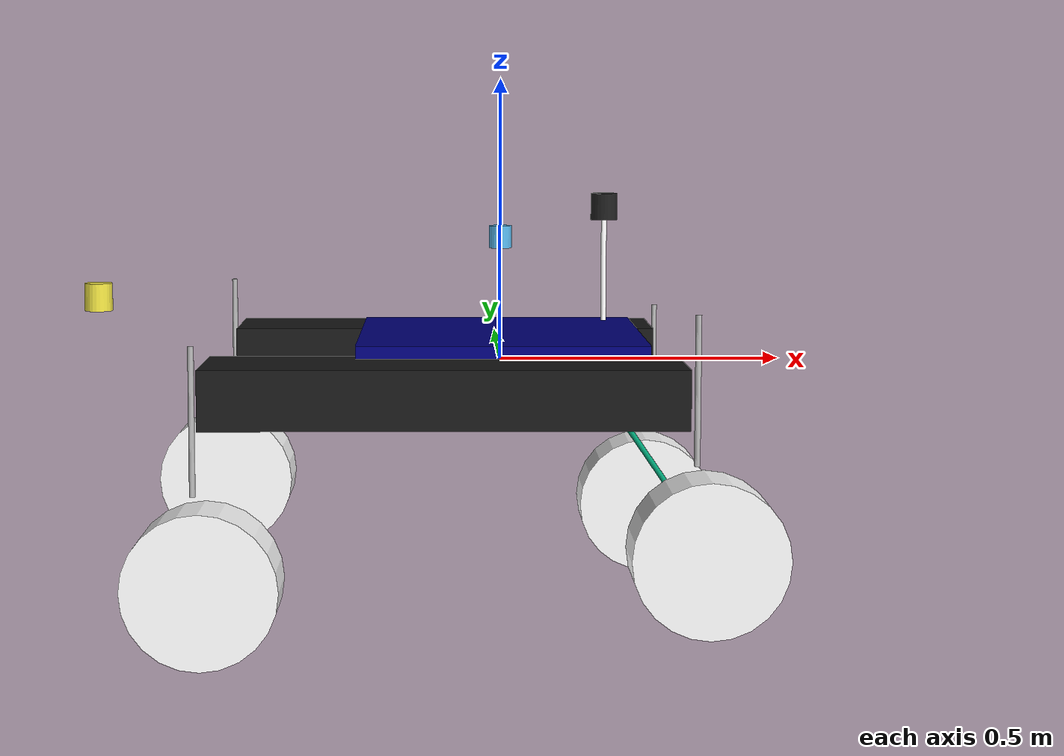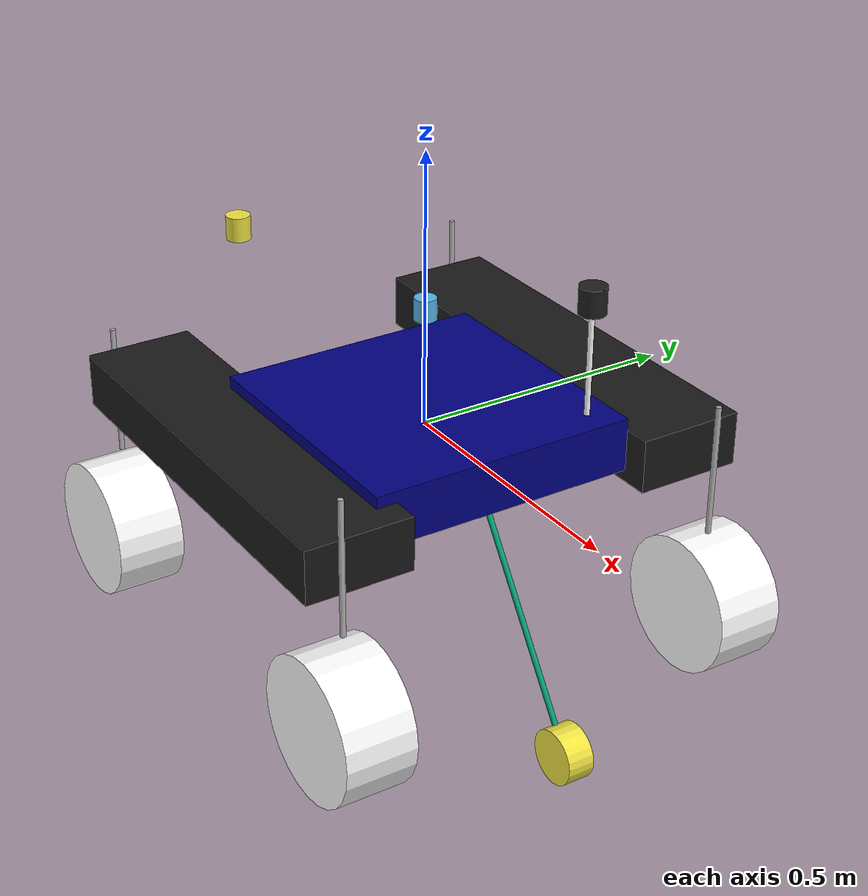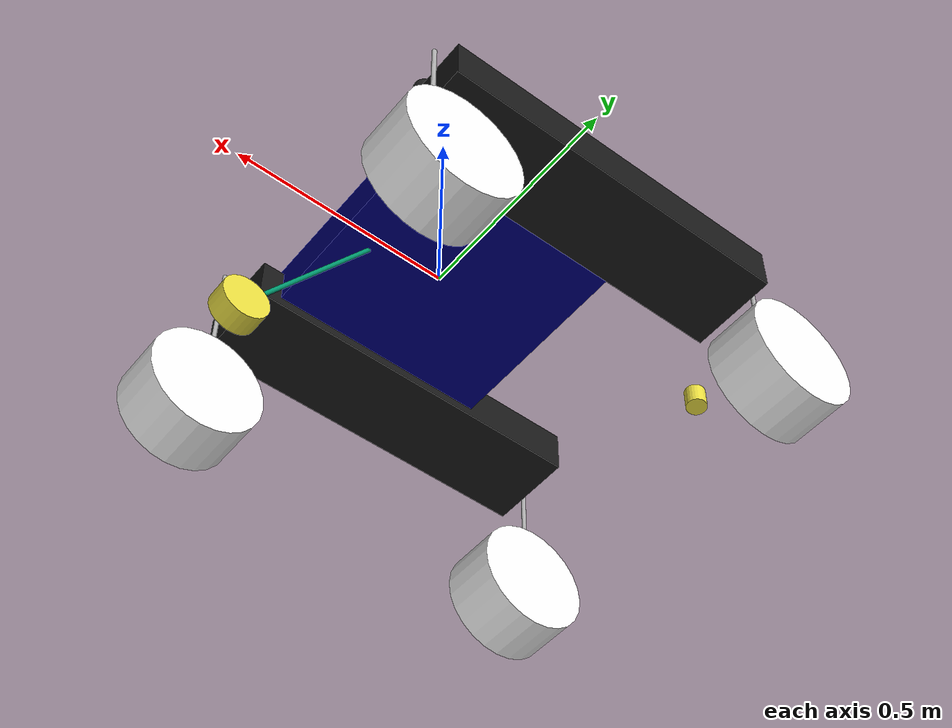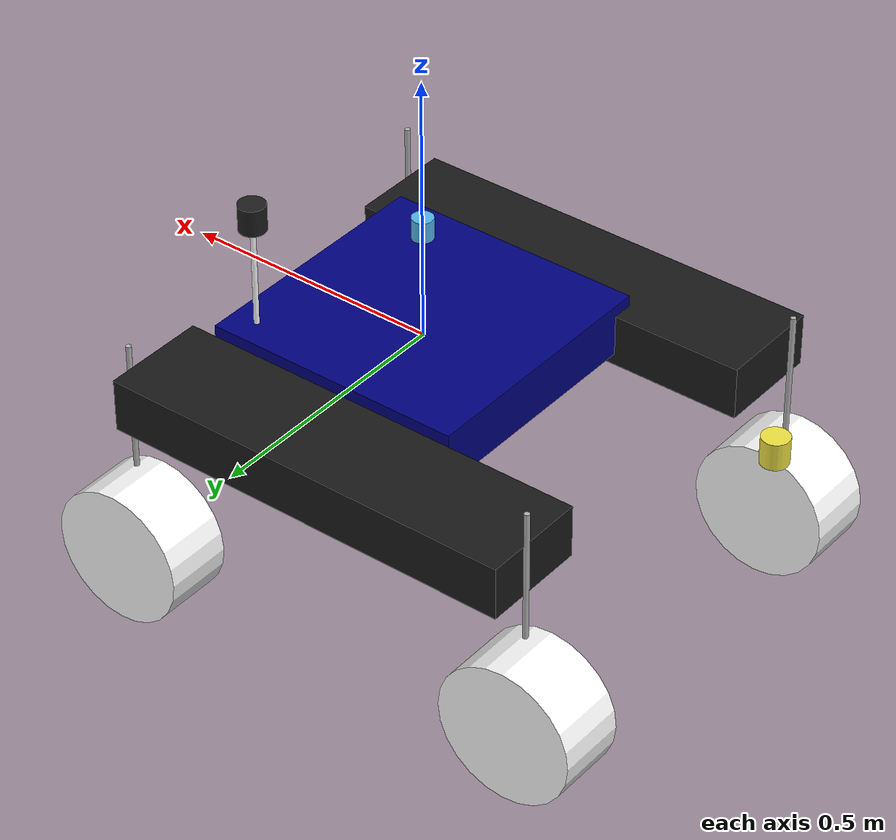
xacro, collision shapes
<?xml version="1.0" ?>
<robot name="rover"
  xmlns:xacro="http://www.ros.org/wiki/xacro">

  <xacro:include filename="$(find xplore_description)/urdf/common/materials.xacro" />
  <xacro:include filename="$(find xplore_description)/urdf/rover/rover.transmission.xacro" />
  <xacro:include filename="$(find xplore_description)/urdf/rover/rover.gazebo.xacro" />
  <xacro:include filename="$(find xplore_description)/urdf/rover/lidar/ouster.xacro" />
  <xacro:include filename="$(find xplore_description)/urdf/rover/imu/imu.xacro" />
  <xacro:include filename="$(find xplore_description)/urdf/common/inertial_macro.xacro" />
  <xacro:include filename="$(find xplore_description)/urdf/rover/camera/oakd_camera.xacro" />
  <xacro:include filename="$(find xplore_description)/urdf/rover/rover.ros2_control.xacro" />

  <xacro:property name="rpm_to_Radps" value="${2*pi/60.0}" />
  <!-- rotations per minute to Rad per second conversion -->
  <xacro:property name="velocity_scaling" value="1.0" />
  <!-- allows to scale all max velocities down at once -->

  <xacro:macro name="aaa_joint_limits" params="lower:=0.0 upper:=0.0 velocity:=${rpm_to_Radps} effort:=100.0">
    <limit lower="${lower}" upper="${upper}" velocity="${velocity}" effort="${effort}"/>
  </xacro:macro>

  <xacro:property name="joint1_limits">
    <xacro:aaa_joint_limits lower="${-1.5*pi}" upper="${1.5*pi}" velocity="${3 * rpm_to_Radps * velocity_scaling}" />
  </xacro:property>

  <xacro:property name="joint2_limits">
    <xacro:aaa_joint_limits lower="${-pi}" upper="${pi/2}" velocity="${1 * rpm_to_Radps * velocity_scaling}" />
  </xacro:property>

  <xacro:property name="joint3_limits">
    <xacro:aaa_joint_limits lower="${-pi/4}" upper="${pi/4}" velocity="${1.5 * rpm_to_Radps * velocity_scaling}" />
  </xacro:property>

  <xacro:property name="joint4_limits">
    <xacro:aaa_joint_limits lower="${-2*pi}" upper="${2*pi}" velocity="${6 * rpm_to_Radps * velocity_scaling}" />
  </xacro:property>

  <xacro:property name="joint5_limits">
    <xacro:aaa_joint_limits lower="${-pi/2}" upper="${pi/2}" velocity="${2 * rpm_to_Radps * velocity_scaling}" />
  </xacro:property>

  <xacro:property name="joint6_limits">
    <xacro:aaa_joint_limits lower="${-pi}" upper="${pi}" velocity="${6 * rpm_to_Radps * velocity_scaling}" />
  </xacro:property>

  <link name="base_link"></link>

  <!-- Robot Footprint -->
  <link name="base_footprint"/>

  <joint name="base_joint" type="fixed">
    <parent link="base_link"/>
    <child link="base_footprint"/>
    <origin xyz="0.0 0.0 -0.40" rpy="0 0 0"/>
  </joint>

  <joint name="chassis_joint" type="fixed">

    <parent link="base_link"/>
    <child link="chassis_link"/>
    <origin xyz="0 0 0 " rpy="0 0 0"/>
    <axis xyz="0.0 1.0 0.0"/>
  </joint>

  <link name="chassis_link">
    <inertial>
      <origin xyz="0.05362398614035063 0.01974617698532859 0.037120813316089823" rpy="0 0 0"/>
      <mass value="6.257043020156179"/>
      <inertia ixx="0.340644" iyy="0.466541" izz="0.402706" ixy="0.000337" iyz="0.00055" ixz="-0.092411"/>
    </inertial>
    <visual>
      <origin xyz="0 0 0" rpy="0 0 0"/>
      <geometry>
        <mesh filename="file://$(find xplore_description)/meshes/rover/base_link.stl" scale="0.001 0.001 0.001"/>
      </geometry>
      <material name="blue"/>
    </visual>
    <collision>
      <origin xyz="0 0 0" rpy="0 0 0"/>
      <geometry>
        <box size="0.5 0.5 0.1"/>
      </geometry>
    </collision>
  </link>

  <link name="steering3_link">
    <inertial>
      <origin xyz="-0.01189644601781037 -0.036027929982466456 -0.2129618322901442" rpy="0 0 0"/>
      <mass value="0.3543584805415501"/>
      <inertia ixx="0.003558" iyy="0.003121" izz="0.000562" ixy="2e-06" iyz="-0.000206" ixz="-0.000178"/>
    </inertial>
    <visual>
      <origin xyz="-0.421384 -0.393882 0.063562" rpy="0 0 0"/>
      <geometry>
        <mesh filename="file://$(find xplore_description)/meshes/rover/steering_1.stl" scale="0.001 0.001 0.001"/>
      </geometry>
      <material name="silver"/>
    </visual>
    <collision>
      <origin xyz="0 0 0" rpy="0 0 0"/>
      <geometry>
        <cylinder length="0.25" radius="0.005"/>
      </geometry>
    </collision>
  </link>

  <link name="steering4_link">
    <inertial>
      <origin xyz="0.011896575272170529 0.03602765244982159 -0.21296112839152875" rpy="0 0 0"/>
      <mass value="0.3543584805415501"/>
      <inertia ixx="0.003558" iyy="0.003121" izz="0.000562" ixy="2e-06" iyz="0.000206" ixz="0.000178"/>
    </inertial>
    <visual>
      <origin xyz="-0.42341 0.353934 0.012408" rpy="0 0 0"/>
      <geometry>
        <mesh filename="file://$(find xplore_description)/meshes/rover/steering_2.stl" scale="0.001 0.001 0.001"/>
      </geometry>
      <material name="silver"/>
    </visual>
    <collision>
      <origin xyz="0 0 0" rpy="0 0 0"/>
      <geometry>
        <cylinder length="0.25" radius="0.005"/>
      </geometry>
    </collision>
  </link>

  <link name="steering1_link">
    <inertial>
      <origin xyz="0.011896795779964109 0.03602765244982109 -0.21296183229014454" rpy="0 0 0"/>
      <mass value="0.3543584805415501"/>
      <inertia ixx="0.003558" iyy="0.003121" izz="0.000562" ixy="2e-06" iyz="0.000206" ixz="0.000178"/>
    </inertial>
    <visual>
      <origin xyz="0.408171 0.353934 0.063562" rpy="0 0 0"/>
      <geometry>
        <mesh filename="file://$(find xplore_description)/meshes/rover/steering_3.stl" scale="0.001 0.001 0.001"/>
      </geometry>
      <material name="silver"/>
    </visual>
    <collision>
      <origin xyz="0 0 0" rpy="0 0 0"/>
      <geometry>
        <cylinder length="0.25" radius="0.005"/>
      </geometry>
    </collision>
  </link>

  <link name="steering2_link">
    <inertial>
      <origin xyz="-0.011896225510015512 -0.036027929982466234 -0.21296112839152861" rpy="0 0 0"/>
      <mass value="0.3543584805415501"/>
      <inertia ixx="0.003558" iyy="0.003121" izz="0.000562" ixy="2e-06" iyz="-0.000206" ixz="-0.000178"/>
    </inertial>
    <visual>
      <origin xyz="0.410197 -0.393882 0.012408" rpy="0 0 0"/>
      <geometry>
        <mesh filename="file://$(find xplore_description)/meshes/rover/steering_4.stl" scale="0.001 0.001 0.001"/>
      </geometry>
      <material name="silver"/>
    </visual>
    <collision>
      <origin xyz="0 0 0" rpy="0 0 0"/>
      <geometry>
        <cylinder length="0.25" radius="0.005"/>
      </geometry>
    </collision>
  </link>

  <link name="wheel2_link">
    <inertial>
      <origin xyz="0.0003394916280188287 -0.010196510227617639 -2.006330920018007e-05" rpy="0 0 0"/>
      <mass value="1.592763813314383"/>
      <inertia ixx="0.010896" iyy="0.018605" izz="0.010887" ixy="-0.000257" iyz="1.6e-05" ixz="-0.0"/>
    </inertial>
    <visual>
      <origin xyz="0.42733 -0.410572 0.281864" rpy="0 0 0"/>
      <geometry>
        <mesh filename="file://$(find xplore_description)/meshes/rover/wheel3_1.stl" scale="0.001 0.001 0.001"/>
      </geometry>
      <material name="pink"/>
    </visual>
    <collision>
      <origin xyz="0 0 0" rpy="1.57 0 0"/>
      <geometry>
        <cylinder length="0.13" radius="0.13"/>
      </geometry>
    </collision>
  </link>

  <link name="wheel3_link">
    <inertial>
      <origin xyz="0.0003392711202230836 -0.010196510227618527 -1.9767207815879484e-05" rpy="0 0 0"/>
      <mass value="1.592763813314383"/>
      <inertia ixx="0.010896" iyy="0.018605" izz="0.010887" ixy="-0.000257" iyz="1.6e-05" ixz="-0.0"/>
    </inertial>
    <visual>
      <origin xyz="-0.404251 -0.410572 0.333019" rpy="0 0 0"/>
      <geometry>
        <mesh filename="file://$(find xplore_description)/meshes/rover/wheel4_1.stl" scale="0.001 0.001 0.001"/>
      </geometry>
      <material name="pink"/>
    </visual>
    <collision>
      <origin xyz="0 0 0" rpy="1.57 0 0"/>
      <geometry>
        <cylinder length="0.13" radius="0.13"/>
      </geometry>
    </collision>
  </link>

  <link name="wheel1_link">
    <inertial>
      <origin xyz="-0.0003399213580693172 0.010197232694972913 -1.9767207816323573e-05" rpy="0 0 0"/>
      <mass value="1.592763813314383"/>
      <inertia ixx="0.010896" iyy="0.018605" izz="0.010887" ixy="-0.000257" iyz="-1.6e-05" ixz="0.0"/>
    </inertial>
    <visual>
      <origin xyz="0.391037 0.370625 0.333019" rpy="0 0 0"/>
      <geometry>
        <mesh filename="file://$(find xplore_description)/meshes/rover/wheel2_1.stl" scale="0.001 0.001 0.001"/>
      </geometry>
      <material name="pink"/>
    </visual>
    <collision>
     <origin xyz="0 0 0" rpy="1.57 0 0"/>
      <geometry>
        <cylinder length="0.13" radius="0.13"/>
      </geometry>
    </collision>
  </link>

  <link name="wheel4_link">
    <inertial>
      <origin xyz="-0.0003391418658636458 0.010197232694973468 -2.0063309200568646e-05" rpy="0 0 0"/>
      <mass value="1.592763813314383"/>
      <inertia ixx="0.010896" iyy="0.018605" izz="0.010887" ixy="-0.000257" iyz="-1.6e-05" ixz="0.0"/>
    </inertial>
    <visual>
      <origin xyz="-0.440543 0.370625 0.281864" rpy="0 0 0"/>
      <geometry>
        <mesh filename="file://$(find xplore_description)/meshes/rover/wheel1_1.stl" scale="0.001 0.001 0.001"/>
      </geometry>
      <material name="pink"/>
    </visual>
    <collision>
      <origin xyz="0 0 0" rpy="1.57 0 0"/>
      <geometry>
        <cylinder length="0.13" radius="0.13"/>
      </geometry>
    </collision>
  </link>

  <link name="right_leg">
    <inertial>
      <origin xyz="0.0009668399350314201 0.11623489359260658 0.013375805290350871" rpy="0 0 0"/>
      <mass value="1.6615144825592312"/>
      <inertia ixx="0.007103" iyy="0.220618" izz="0.220639" ixy="-5.6e-05" iyz="-0.000815" ixz="0.013196"/>
    </inertial>
    <visual>
      <origin xyz="-0.006607 -0.250474 0.021516" rpy="0 0 0"/>
      <geometry>
        <mesh filename="file://$(find xplore_description)/meshes/rover/pivot_droit_1.stl" scale="0.001 0.001 0.001"/>
      </geometry>
      <material name="black"/>
    </visual>
    <collision>
      <origin xyz="0 0.1 0" rpy="0 0 0"/>
      <geometry>
        <box size="0.8 0.2 0.1"/>
      </geometry>
    </collision>
  </link>

  <link name="left_leg">
    <inertial>
      <origin xyz="-0.0009674901728771402 -0.11623517112525206 0.013375805290350576" rpy="0 0 0"/>
      <mass value="1.6615144825592312"/>
      <inertia ixx="0.007103" iyy="0.220618" izz="0.220639" ixy="-5.6e-05" iyz="0.000815" ixz="-0.013196"/>
    </inertial>
    <visual>
      <origin xyz="-0.006607 0.210526 0.021516" rpy="0 0 0"/>
      <geometry>
        <mesh filename="file://$(find xplore_description)/meshes/rover/pivot_gauche_1.stl" scale="0.001 0.001 0.001"/>
      </geometry>
      <material name="black"/>
    </visual>
    <collision>
      <origin xyz="0 -0.1 0" rpy="0 0 0"/>
      <geometry>
        <box size="0.8 0.2 0.1"/>
      </geometry>
    </collision>
  </link>

  <joint name="chassis_to_lidar_axis" type="fixed">
    <origin xyz="0.2 0.20 0.12" rpy="0 0 0"/>
    <parent link="chassis_link"/>
    <child link="lidar_axis"/>
  </joint>
  <link name="lidar_axis">
    <visual>
      <geometry>
        <cylinder length="0.24" radius="0.005"/>
      </geometry>
      <material name="white"/>
    </visual>
    <collision>
      <geometry>
        <cylinder length="0.24" radius="0.005"/>
      </geometry>
    </collision>
    <xacro:inertial_cylinder mass="0.25" length="0.24" radius="0.005">
      <origin xyz="0 0 0" />
    </xacro:inertial_cylinder>
  </link>

  <joint name="steering3" type="continuous">
    <origin xyz="0.414777 0.143408 -0.042046" rpy="0 0 0"/>
    <parent link="right_leg"/>
    <child link="steering3_link"/>
    <axis xyz="-0.061399 0.0 -0.998113"/>
  </joint>

  <joint name="steering4" type="continuous">
    <origin xyz="0.416803 -0.143408 0.009108" rpy="0 0 0"/>
    <parent link="left_leg"/>
    <child link="steering4_link"/>
    <axis xyz="-0.061399 0.0 0.998113"/>
  </joint>

  <joint name="steering1" type="continuous">
    <origin xyz="-0.414778 -0.143408 -0.042046" rpy="0 0 0"/>
    <parent link="left_leg"/>
    <child link="steering1_link"/>
    <axis xyz="0.061399 -0.0 -0.998113"/>
  </joint>

  <joint name="steering2" type="continuous">
    <origin xyz="-0.416804 0.143408 0.009108" rpy="0 0 0"/>
    <parent link="right_leg"/>
    <child link="steering2_link"/>
    <axis xyz="0.061399 -0.0 0.998113"/>
  </joint>

  <joint name="driving2" type="continuous">
    <origin xyz="-0.017133 0.01669 -0.269456" rpy="0 0 0"/>
    <parent link="steering2_link"/>
    <child link="wheel2_link"/>
    <axis xyz="-0.033267 0.999444 0.002046"/>
  </joint>

  <joint name="driving3" type="continuous">
    <origin xyz="-0.017133 0.01669 -0.269457" rpy="0 0 0"/>
    <parent link="steering3_link"/>
    <child link="wheel3_link"/>
    <axis xyz="-0.033267 0.999444 0.002046"/>
  </joint>

  <joint name="driving1" type="continuous">
    <origin xyz="0.017134 -0.016691 -0.269457" rpy="0 0 0"/>
    <parent link="steering1_link"/>
    <child link="wheel1_link"/>
    <axis xyz="0.033267 -0.999444 0.002046"/>
  </joint>

  <joint name="driving4" type="continuous">
    <origin xyz="0.017133 -0.016691 -0.269456" rpy="0 0 0"/>
    <parent link="steering4_link"/>
    <child link="wheel4_link"/>
    <axis xyz="0.033267 -0.999444 0.002046"/>
  </joint>

  <joint name="chassis_to_caster_axis" type="continuous">
    <origin xyz="0.3 0.0 -0.225" rpy="0 -0.6 0"/>
    <axis xyz="0 0 1"/>
    <parent link="chassis_link"/>
    <child link="caster_axis"/>
  </joint>
  <link name="caster_axis">
    <visual>
      <geometry>
        <cylinder length="0.45" radius="0.005"/>
      </geometry>
    </visual>
    <collision>
      <geometry>
        <cylinder length="0.45" radius="0.005"/>
      </geometry>
    </collision>
    <xacro:inertial_cylinder mass="0.25" length="0.45" radius="0.005">
      <origin xyz="0 0 0" />
    </xacro:inertial_cylinder>
  </link>

  <joint name="caster_axis_to_caster_wheel" type="continuous">
    <origin xyz="0 0 -0.25" rpy="${pi/2} 0 0"/>
    <parent link="caster_axis"/>
    <axis xyz="0 0 1"/>
    <child link="caster_wheel"/>
  </joint>
  <link name="caster_wheel">
    <visual>
      <geometry>
        <cylinder length="0.05" radius="0.05"/>
      </geometry>
    </visual>
    <collision>
      <origin xyz="0 0 0" rpy="0 0 0"/>
      <geometry>
        <cylinder length="0.05" radius="0.05"/>
      </geometry>
    </collision>
    <xacro:inertial_cylinder mass="0.25" length="0.05" radius="0.05">
      <origin xyz="0 0 0" />
    </xacro:inertial_cylinder>
  </link>

  <joint name="right_pivot" type="continuous">
    <origin xyz="-0.1 0.250474 -0.021516" rpy="0 0 0"/>
    <parent link="chassis_link"/>
    <child link="right_leg"/>
    <axis xyz="0.0 1.0 0.0"/>
  </joint>

  <joint name="left_pivot" type="continuous">
    <origin xyz="-0.1 -0.210526 -0.021516" rpy="0 0 0"/>
    <parent link="chassis_link"/>
    <child link="left_leg"/>
    <mimic joint="right_pivot" multiplier="-1.0" />
    <axis xyz="0.0 1.0 0.0"/>
  </joint>

</robot>

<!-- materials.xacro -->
<robot name="robot" xmlns:xacro="http://www.ros.org/wiki/xacro" >

<material name="silver">
  <color rgba="0.700 0.700 0.700 1.000"/>
</material>

<material name="black">
  <color rgba="0.1 0.1 0.1 1.000"/>
</material>

<material name="white">
  <color rgba="1 1 1 1.000"/>
</material>

<material name="pink">
  <color rgba="1 1 1 1.000"/>
</material>

<material name="blue">
  <color rgba="0 0 0.5 1.000"/>
</material>

</robot>

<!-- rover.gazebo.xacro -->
<robot name="rover"
  xmlns:xacro="http://www.ros.org/wiki/xacro">

  <xacro:property name="body_color" value="Gazebo/Grey" />

  <gazebo>
    <plugin name="gazebo_ros2_control" filename="libgazebo_ros2_control.so">
      <parameters>$(find xplore_description)/config/control.yaml</parameters>
    </plugin>
  </gazebo>

  <gazebo>
    <plugin name="p3d_base_controller" filename="libgazebo_ros_p3d.so">
      <update_rate>100.0</update_rate>
      <body_name>base_link</body_name>
      <topic_name>odom</topic_name>
      <gaussian_noise>0.01</gaussian_noise>
      <frame_name>map</frame_name>
      <xyz_offset>0 0 0</xyz_offset>
      <rpy_offset>0 0 0</rpy_offset>
    </plugin>
  </gazebo>

  <gazebo reference="chassis_link">
    <material>${body_color}</material>
    <mu1>0.2</mu1>
    <mu2>0.2</mu2>
  </gazebo>

  <gazebo reference="steering1_link">
    <material>${body_color}</material>
    <mu1>0.2</mu1>
    <mu2>0.2</mu2>
  </gazebo>

  <gazebo reference="steering2_link">
    <material>${body_color}</material>
    <mu1>0.2</mu1>
    <mu2>0.2</mu2>
  </gazebo>

  <gazebo reference="steering3_link">
    <material>${body_color}</material>
    <mu1>0.2</mu1>
    <mu2>0.2</mu2>
  </gazebo>

  <gazebo reference="steering4_link">
    <material>${body_color}</material>
    <mu1>0.2</mu1>
    <mu2>0.2</mu2>
  </gazebo>

  <gazebo reference="wheel3_link">
    <material>${body_color}</material>
    <mu1>0.2</mu1>
    <mu2>0.2</mu2>
  </gazebo>

  <gazebo reference="wheel4_link">
    <material>${body_color}</material>
    <mu1>0.2</mu1>
    <mu2>0.2</mu2>
  </gazebo>

  <gazebo reference="wheel2_link">
    <material>${body_color}</material>
    <mu1>0.2</mu1>
    <mu2>0.2</mu2>
  </gazebo>

  <gazebo reference="wheel1_link">
    <material>${body_color}</material>
    <mu1>0.2</mu1>
    <mu2>0.2</mu2>
  </gazebo>

  <gazebo reference="lidar_axis">
    <material>Gazebo/LightGrey</material>
  </gazebo>

  <gazebo reference="right_leg">
    <material>${body_color}</material>
    <mu1>0.2</mu1>
    <mu2>0.2</mu2>
    <selfCollide>true</selfCollide>
  </gazebo>

  <gazebo reference="left_leg">
    <material>${body_color}</material>
    <mu1>0.2</mu1>
    <mu2>0.2</mu2>
    <selfCollide>true</selfCollide>
  </gazebo>

</robot>

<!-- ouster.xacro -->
<robot xmlns:xacro="http://ros.org/wiki/xacro">

  <xacro:include filename="$(find xplore_description)/urdf/common/inertial_macro.xacro" />

    <joint name="lidar_joint" type="fixed">
        <origin xyz="0.0 0 0.145" rpy="0 0 ${pi}"/>

        <parent link="lidar_axis"/>
        <child link="lidar_link"/>
    </joint>

      <link name="lidar_link">
        <visual>
          <geometry>
            <mesh filename="file://$(find xplore_description)/meshes/rover/lidar/os1.dae" />
            </geometry>
        </visual>
        <collision >
          <geometry>
            <cylinder length="0.05" radius="0.025"/>
          </geometry>
          <laser_retro>100.0</laser_retro>
        </collision>
         <xacro:inertial_cylinder mass="0.1" length="0.05" radius="0.025">
             <origin xyz="0 0 0" rpy="0 0 0"/>
        </xacro:inertial_cylinder>
        </link>

        <gazebo reference="lidar_link">
        <material>Gazebo/Black</material>
        <sensor name="sensor_gpu_ray" type="gpu_ray">
          <ray>
            <scan>
              <horizontal>
                <samples>512</samples>
                <min_angle>-3.14</min_angle>
                <max_angle>3.14</max_angle>
              </horizontal>
              <vertical>
                <samples>64</samples>

                <min_angle>-0.78</min_angle>
                <max_angle>0.78</max_angle>
              </vertical>
            </scan>
            <range>
              <min>0.5</min>
              <max>100.0</max>
              <resolution>0.008</resolution>
            </range>
          </ray>
          <always_on>true</always_on>
          <visualize>false</visualize>
          <update_rate>10.0</update_rate>
          <plugin name="pc2_gpu" filename="libgazebo_ros_ray_sensor.so">
            <ros>
              <namespace>/ouster</namespace>
              <remapping>~/out:=points</remapping>
            </ros>
            <output_type>sensor_msgs/PointCloud2</output_type>
             <frame_name>lidar_link</frame_name>
          </plugin>

        </sensor>

         </gazebo>

   <gazebo reference="lidar_link">
        <sensor name="sensor_scan" type="ray">
          <ray>
            <scan>
              <horizontal>
                <samples>512</samples>
                <min_angle>-3.14</min_angle>
                <max_angle>3.14</max_angle>
              </horizontal>
            </scan>
            <range>
              <min>0.5</min>
              <max>100.0</max>
              <resolution>0.008</resolution>
            </range>
          </ray>
          <always_on>true</always_on>
          <visualize>false</visualize>
          <update_rate>10.0</update_rate>
          <plugin name="scan" filename="libgazebo_ros_ray_sensor.so">
            <ros>
              <namespace>/ouster</namespace>
              <remapping>~/out:=scan</remapping>
            </ros>
            <output_type>sensor_msgs/LaserScan</output_type>
             <frame_name>lidar_link</frame_name>
          </plugin>
        </sensor>
      </gazebo>

</robot>

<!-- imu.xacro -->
<robot xmlns:xacro="http://www.ros.org/wiki/xacro" name="imu">

    <xacro:include filename="$(find xplore_description)/urdf/common/inertial_macro.xacro" />

    <joint name="imu_joint" type="fixed">

        <origin xyz="0.2 0 0.11" rpy="0 0 -${pi}"/>
        <parent link="chassis_link"/>
        <child link="imu_link"/>
    </joint>

    <link name="imu_link">
        <collision>
            <origin xyz="0.2 0 0.11" rpy="0 0 -1.57"/>
            <geometry>
                <cylinder radius="0.02" length="0.04"/>
            </geometry>
        </collision>
        <visual>
            <geometry>
                <cylinder radius="0.02" length="0.04"/>
            </geometry>

        </visual>
        <xacro:inertial_cylinder mass="0.1" length="0.04" radius="0.02">
            <origin xyz="0.2 0 0.11" rpy="0 0 -1.57"/>
        </xacro:inertial_cylinder>
    </link>

    <gazebo reference="imu_link">
        <sensor name='imu_sensor' type='imu'>
            <always_on>true</always_on>
            <update_rate>100</update_rate>
            <visualize>true</visualize>
            <pose>0 0 0 0 0 0</pose>

            <plugin name='imu_plugin' filename='libgazebo_ros_imu_sensor.so'>
                <ros>
                    <namespace>/arduino</namespace>
                    <remapping>~/out:=imu</remapping>
                </ros>
                <initial_orientation_as_reference>false</initial_orientation_as_reference>
                <output_type>sensor_msgs/msg/Imu</output_type>
                <frame_name>imu_sensor_link</frame_name>
            </plugin>
            <imu>
                <angular_velocity>
                    <x>
                        <noise type="gaussian">
                            <mean>0.0</mean>
                            <stddev>2e-4</stddev>
                            <bias_mean>0.0000075</bias_mean>
                            <bias_stddev>0.0000008</bias_stddev>
                        </noise>
                    </x>
                    <y>
                        <noise type="gaussian">
                            <mean>0.0</mean>
                            <stddev>2e-4</stddev>
                            <bias_mean>0.0000075</bias_mean>
                            <bias_stddev>0.0000008</bias_stddev>
                        </noise>
                    </y>
                    <z>
                        <noise type="gaussian">
                            <mean>0.0</mean>
                            <stddev>2e-4</stddev>
                            <bias_mean>0.0000075</bias_mean>
                            <bias_stddev>0.0000008</bias_stddev>
                        </noise>
                    </z>
                </angular_velocity>
                <linear_acceleration>
                    <x>
                        <noise type="gaussian">
                            <mean>0.0</mean>
                            <stddev>1.7e-2</stddev>
                            <bias_mean>0.1</bias_mean>
                            <bias_stddev>0.001</bias_stddev>
                        </noise>
                    </x>
                    <y>
                        <noise type="gaussian">
                            <mean>0.0</mean>
                            <stddev>1.7e-2</stddev>
                            <bias_mean>0.1</bias_mean>
                            <bias_stddev>0.001</bias_stddev>
                        </noise>
                    </y>
                    <z>
                        <noise type="gaussian">
                            <mean>0.0</mean>
                            <stddev>1.7e-2</stddev>
                            <bias_mean>0.1</bias_mean>
                            <bias_stddev>0.001</bias_stddev>
                        </noise>
                    </z>
                </linear_acceleration>
            </imu>
        </sensor>
    </gazebo>

</robot>

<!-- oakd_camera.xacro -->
<robot xmlns:xacro="http://ros.org/wiki/xacro">

  <joint name="camera_joint" type="fixed">
    <origin xyz="-0.325 0.02 0" rpy="0 0 ${pi}"/>
    <parent link="chassis_link"/>
    <child link="camera_link"/>
  </joint>

  <joint name="camera_optical_joint" type="fixed">
    <parent link="camera_link"/>
    <child link="camera_link_optical"/>
    <origin xyz="0 0 0" rpy="-1.57 0 -1.57"/>
  </joint>

  <link name="camera_link_optical"></link>

  <link name="camera_link">
    <visual name="camera_visual">
      <geometry>
        <mesh filename="file://$(find xplore_description)/meshes/rover/camera/OAK-D.dae" />
      </geometry>
    </visual>
    <collision>
      <origin xyz="0.4 0 0.11" rpy="0 0 0" />
      <geometry>
        <cylinder length="0.05" radius="0.025"/>
      </geometry>
    </collision>
    <xacro:inertial_cylinder mass="0.1" length="0.05" radius="0.025">
      <origin xyz="0.4 0 0.11" rpy="0 0 0"/>
    </xacro:inertial_cylinder>
  </link>

  <gazebo reference="camera_link">
    <sensor name="stereo" type="depth">
      <always_on>true</always_on>
      <visualize>true</visualize>
      <update_rate>10</update_rate>
      <camera name="stereo">
        <horizontal_fov>1.26</horizontal_fov>
        <vertical_fov>0.86</vertical_fov>
        <image>
          <width>1280</width>
          <height>720</height>
          <format>R8G8B8</format>
        </image>
        <clip>
          <near>0.7</near>
          <far>8.0</far>
        </clip>
        <noise>
          <type>gaussian</type>
          <mean>0.0</mean>
          <stddev>0.007</stddev>
        </noise>
      </camera>
      <plugin name="depth" filename="libgazebo_ros_camera.so">
        <camera_name>stereo</camera_name>
        <frame_name>camera_optical_link</frame_name>
        <hack_baseline>0.07</hack_baseline>
        <min_depth>0.1</min_depth>
        <max_depth>100.0</max_depth>
      </plugin>
    </sensor>
  </gazebo>

</robot>
